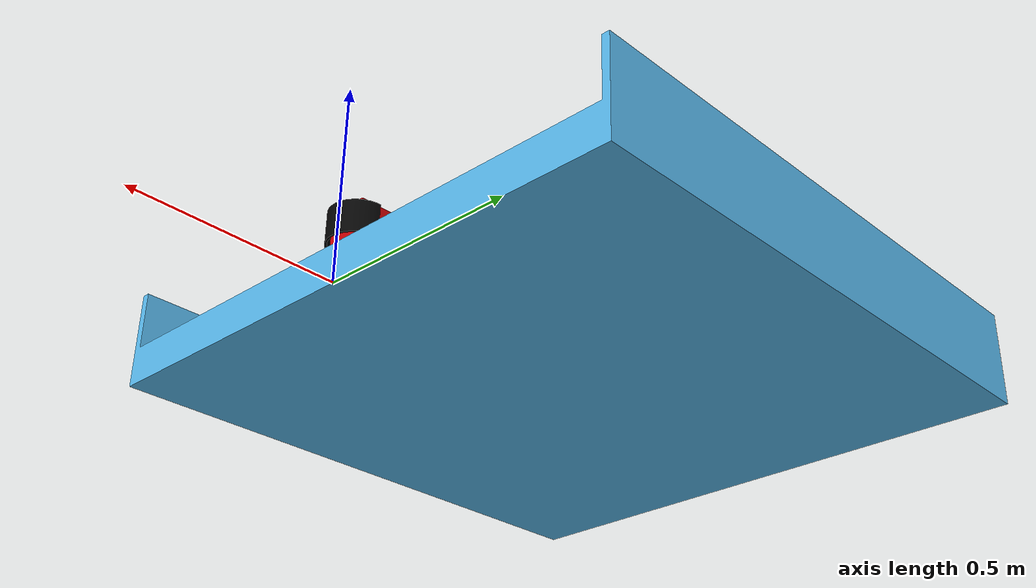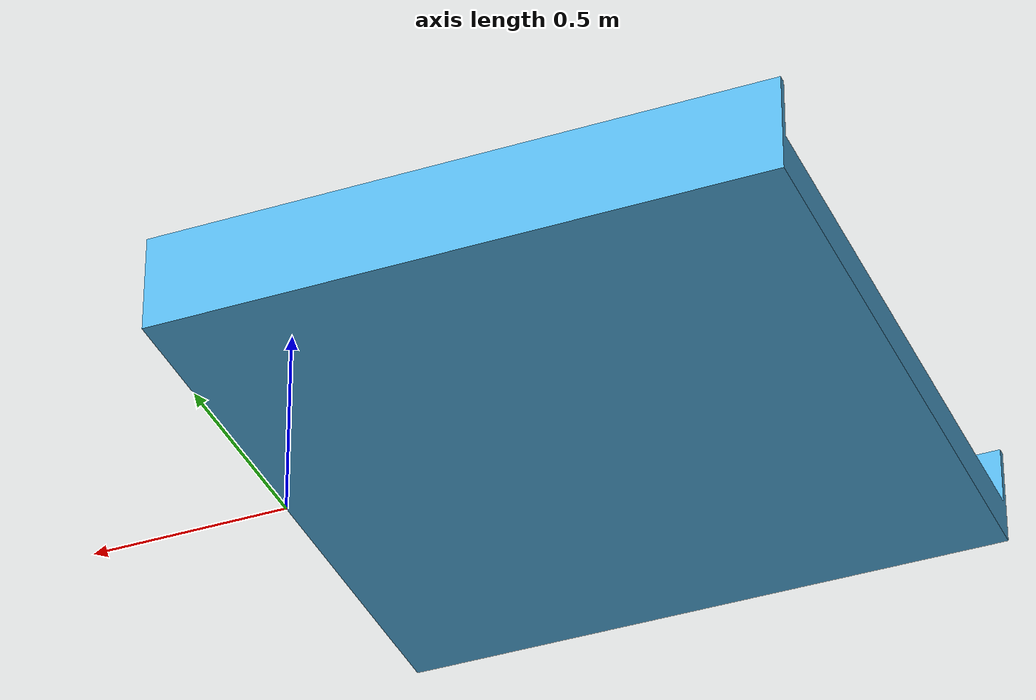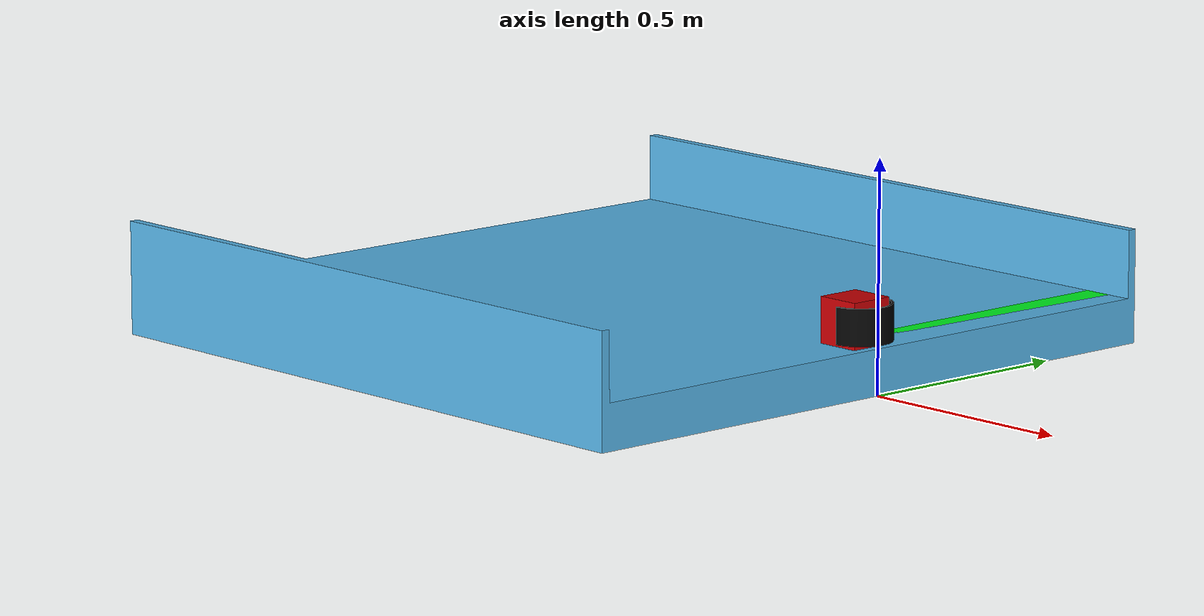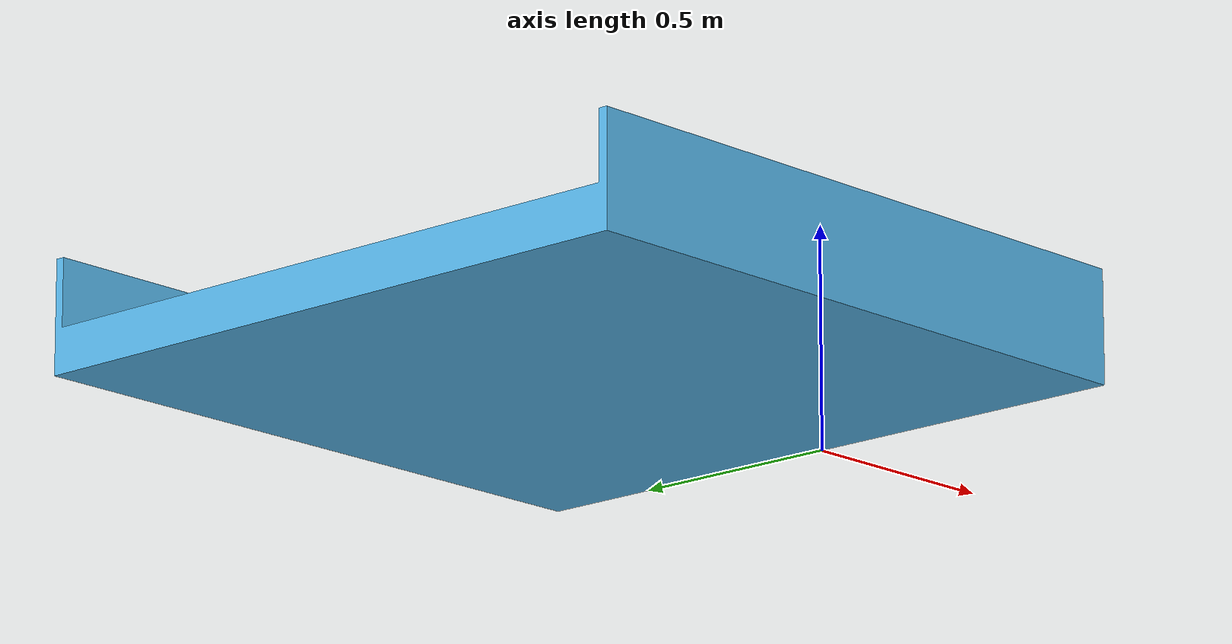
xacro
<?xml version="1.0" ?>
<robot name="robot" xmlns:xacro="http://www.ros.org/wiki/xacro">

  <xacro:include filename="$(find robot_description)/robot/materials.xacro" />
  <xacro:include filename="$(find robot_description)/robot/properties.xacro" />
  <xacro:include filename="$(find robot_description)/robot/macros.xacro" />
  <xacro:include filename="$(find robot_description)/robot/robot_base.xacro" />
  <xacro:include filename="$(find robot_description)/robot/robot_sliding_base.xacro" />
  <xacro:include filename="$(find robot_description)/robot/robot_body.xacro" />
  <xacro:include filename="$(find robot_description)/robot/robot_head.xacro" />
  <xacro:include filename="$(find robot_description)/robot/robot_control_gazebo.xacro" />

  <xacro:arg name="robot_name" default="robot_1"/>

  <xacro:robot_base robot_name="$(arg robot_name)"/>

  <link name="world"/>

  <joint name="$(arg robot_name)_connect_root_and_world" type="fixed">
    <child link="$(arg robot_name)_base_link" />
    <parent link="world" />
    <origin xyz="0 0 0" rpy="0 0 0" />
  </joint>

  <xacro:robot_sliding_base robot_name="$(arg robot_name)" parent="$(arg robot_name)_base_link">
	  <origin xyz="-0.07 0 0.085" rpy="0 0 0"/>
	  <axis xyz="1 0 0"/>
  </xacro:robot_sliding_base>

  <xacro:robot_body robot_name="$(arg robot_name)" parent="$(arg robot_name)_sliding_base_link">
	  <origin xyz="0.0 0.0 0.065" rpy="0 0 0"/>
	  <axis xyz="0 1 0"/>
  </xacro:robot_body>

  <xacro:robot_gazebo_systems robot_name="$(arg robot_name)"/>

  <xacro:robot_head robot_name="$(arg robot_name)" parent="$(arg robot_name)_body_link">
	  <origin xyz="0 0 0" rpy="0 0 0"/>
	  <axis xyz="1 0 0"/>
  </xacro:robot_head>

</robot>

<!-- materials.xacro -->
<robot>
  <material name="red">
      <color rgba="1.0 0.0 0.0 1"/>
  </material>

  <material name="green_light">
      <color rgba="0.0 1.0 0.0 1"/>
  </material>

  <material name="green_dark">
    <color rgba="0.0 0.5 0.0 1"/>
  </material>

  <material name="blue">
      <color rgba="0.0 0.0 1.0 1"/>
  </material>

  <material name="yellow">
      <color rgba="1.0 1.0 0.0 1"/>
  </material>

  <material name="black">
      <color rgba="0.0 0.0 0.0 1"/>
  </material>

  <material name="white">
      <color rgba="1.0 1.0 1.0 1"/>
  </material>

  <material name="robot_blue">
      <color rgba="0.088656 0.428691 0.491021 1"/>
  </material>
</robot>

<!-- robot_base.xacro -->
<robot xmlns:xacro="http://www.ros.org/wiki/xacro">

    <xacro:macro  name="robot_base" params="robot_name">

      <link name="${robot_name}_base_link">
      </link>

      <link name="${robot_name}_chassis">
        <visual>
          <geometry>
            <mesh filename="package://robot_description/meshes/self_play_stage_${robot_name}.dae"/>
          </geometry>
        </visual>

        <collision>
          <geometry>
            <mesh filename="package://robot_description/meshes/self_play_stage.stl"/>
          </geometry>
        </collision>

        <inertial>
          <mass value="100.0"/>
          <origin rpy="0 0 0" xyz="0 0 0"/>
          <inertia ixx="0.08333333333333335" ixy="0" ixz="0" iyy="0.08333333333333335" iyz="0" izz="0.08333333333333335"/>
        </inertial>

      </link>

      <joint name="${robot_name}_base_link_joint" type="fixed">
        <origin rpy="0 0 0" xyz="0 0 0" />
        <parent link="${robot_name}_base_link" />
        <child link="${robot_name}_chassis" />
      </joint>

    </xacro:macro >

</robot>

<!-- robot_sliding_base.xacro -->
<robot xmlns:xacro="http://ros.org/wiki/xacro">

  <xacro:macro name="robot_sliding_base" params="robot_name parent *joint_origin *joint_axis">
	<joint name="${robot_name}_sliding_base_joint" type="prismatic">
	  <xacro:insert_block name="joint_origin"/>
	  <parent link="${parent}"/>
	  <child link="${robot_name}_sliding_base_link"/>
          <limit effort="2" velocity="3" lower="-1.48" upper="0.0"/>
          <dynamics damping="0.0" friction="0.1"/>
	  <xacro:insert_block name="joint_axis"/>
	</joint>

	<link name="${robot_name}_sliding_base_link">
	  <visual>
		  <geometry>
		    <mesh filename="package://robot_description/meshes/sliding_base.dae"/>
		  </geometry>
	  </visual>
	  <collision>
		  <geometry>
		    <mesh filename="package://robot_description/meshes/sliding_base.stl"/>
		  </geometry>
	  </collision>
	  <inertial>
		  <origin xyz="0 0 0"/>
		  <mass value="0.45"/>
		  <inertia ixx="0.0003" ixy="0" ixz="0" iyy="0.00026" iyz="0" izz="0.000052"/>
	  </inertial>
	</link>

  <gazebo reference="${robot_name}_sliding_base_link">
    <selfCollide>false</selfCollide>
    <mu1 value="0.2" />
    <mu2 value="0.2" />
    <kp>1000000000000</kp>
    <kd>1</kd>
  </gazebo>

  </xacro:macro>
</robot>

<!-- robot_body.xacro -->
<robot xmlns:xacro="http://ros.org/wiki/xacro">

  <xacro:macro name="robot_body" params="robot_name parent *joint_origin *joint_axis">
	<joint name="${robot_name}_body_joint" type="prismatic">
	  <xacro:insert_block name="joint_origin"/>
	  <parent link="${parent}"/>
	  <child link="${robot_name}_body_link"/>
          <limit effort="2" velocity="3" lower="-0.7" upper = "0.7"/>
          <dynamics damping="0.005" friction="0.1"/>
	  <xacro:insert_block name="joint_axis"/>
	</joint>

	<link name="${robot_name}_body_link">
	  <visual>
		  <geometry>
		    <mesh filename="package://robot_description/meshes/base_link_${robot_name}.dae"/>
		  </geometry>
	  </visual>
	  <collision>
		  <geometry>
		    <mesh filename="package://robot_description/meshes/base_link.stl"/>
		  </geometry>
	  </collision>
	  <inertial>
		  <origin xyz="0 0 0"/>
		  <mass value="0.45"/>
		  <inertia ixx="0.0003" ixy="0" ixz="0" iyy="0.00026" iyz="0" izz="0.000052"/>
	  </inertial>
	</link>

  <gazebo reference="${robot_name}_body_link">
    <selfCollide>false</selfCollide>
    <mu1 value="1.2" />
    <mu2 value="1.2" />
    <kp>1000000000000</kp>
    <kd>1</kd>
  </gazebo>

  </xacro:macro>
</robot>

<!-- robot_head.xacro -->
<robot xmlns:xacro="http://ros.org/wiki/xacro">

  <xacro:macro name="robot_head" params="robot_name parent *joint_origin *joint_axis">
	<joint name="${robot_name}_head_joint" type="prismatic">
	  <xacro:insert_block name="joint_origin"/>
	  <parent link="${parent}"/>
	  <child link="${robot_name}_head_link"/>
          <limit effort="2" velocity="3" lower="-1.51" upper = "1.51"/>
          <dynamics damping="0.005" friction="0.1"/>
	  <xacro:insert_block name="joint_axis"/>
	</joint>

	<link name="${robot_name}_head_link">
	  <visual>
		  <geometry>
		    <mesh filename="package://robot_description/meshes/robot_head.dae"/>
		  </geometry>
	  </visual>
	  <collision>
		  <geometry>
		    <mesh filename="package://robot_description/meshes/robot_head.stl"/>
		  </geometry>
      <surface>
          <bounce>
            <restitution_coefficient>0.8</restitution_coefficient>
            <threshold>0.01</threshold>
          </bounce>
          <friction>
            <ode>
              <mu>1.2</mu>
              <mu2>1.2</mu2>
            </ode>
          </friction>
          <contact>
            <ode>
              <kp>1000000000000</kp>
              <kd>1</kd>
            </ode>
          </contact>
      </surface>
	  </collision>
	  <inertial>
		  <origin xyz="0 0 0"/>
		  <mass value="0.0045"/>
		  <inertia ixx="0.0003" ixy="0" ixz="0" iyy="0.00026" iyz="0" izz="0.000052"/>
	  </inertial>
	</link>

  <gazebo reference="${robot_name}_head_link">
    <selfCollide>false</selfCollide>
    <mu1 value="1.2" />
    <mu2 value="1.2" />
    <kp>1000000000000</kp>
    <kd>1</kd>
  </gazebo>

  </xacro:macro>
</robot>
